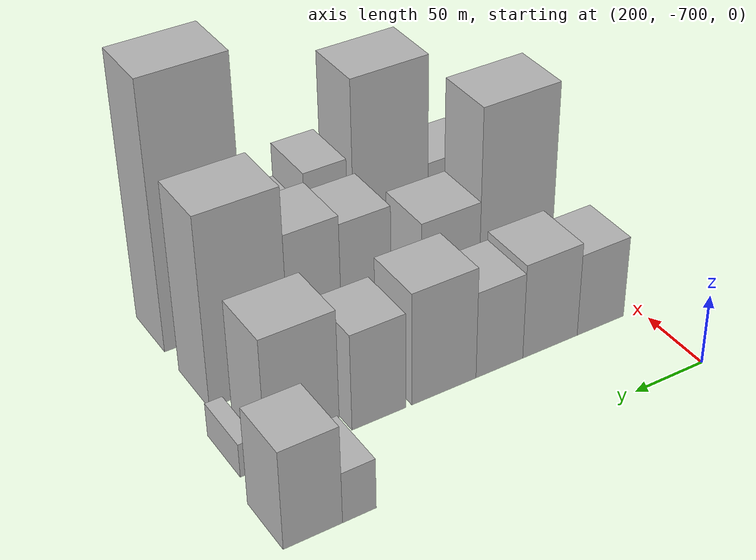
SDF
<sdf version="1.6">
 <world name="default">
  <model name="building_123">
   <static>1</static>
   <pose>220.0000 -462.5780 0 0.000000 0.000000 0.000000</pose>
   <link name="link">
    <pose>0 0 18.00 0 0 0</pose>
    <collision name="collision"><geometry><box><size>40.0000 21.0536 36.0000</size></box></geometry></collision>
    <visual name="visual">
     <cast_shadows>0</cast_shadows>
     <geometry><box><size>40.0000 21.0536 36.0000</size></box></geometry>
     <material>
      <script>
       <uri>model://HANNAS_wall/materials/scripts</uri>
       <uri>model://HANNAS_wall/materials/textures</uri>
       <name>vrc/HANNAS_wall</name>
      </script>
     </material>
    </visual>
   </link>
  </model>
  <model name="building_124">
   <static>1</static>
   <pose>220.0000 -434.0340 0 0.000000 0.000000 0.000000</pose>
   <link name="link">
    <pose>0 0 34.50 0 0 0</pose>
    <collision name="collision"><geometry><box><size>40.0000 36.0343 69.0000</size></box></geometry></collision>
    <visual name="visual">
     <cast_shadows>0</cast_shadows>
     <geometry><box><size>40.0000 36.0343 69.0000</size></box></geometry>
     <material>
      <script>
       <uri>model://HANNAS_wall/materials/scripts</uri>
       <uri>model://HANNAS_wall/materials/textures</uri>
       <name>vrc/HANNAS_wall</name>
      </script>
     </material>
    </visual>
   </link>
  </model>
  <model name="building_173">
   <static>1</static>
   <pose>280.0000 -670.2677 0 0.000000 0.000000 0.000000</pose>
   <link name="link">
    <pose>0 0 30.00 0 0 0</pose>
    <collision name="collision"><geometry><box><size>40.0000 35.5567 60.0000</size></box></geometry></collision>
    <visual name="visual">
     <cast_shadows>0</cast_shadows>
     <geometry><box><size>40.0000 35.5567 60.0000</size></box></geometry>
     <material>
      <script>
       <uri>model://HANNAS_wall/materials/scripts</uri>
       <uri>model://HANNAS_wall/materials/textures</uri>
       <name>vrc/HANNAS_wall</name>
      </script>
     </material>
    </visual>
   </link>
  </model>
  <model name="building_174">
   <static>1</static>
   <pose>280.0000 -632.2430 0 0.000000 0.000000 0.000000</pose>
   <link name="link">
    <pose>0 0 34.50 0 0 0</pose>
    <collision name="collision"><geometry><box><size>40.0000 40.4929 69.0000</size></box></geometry></collision>
    <visual name="visual">
     <cast_shadows>0</cast_shadows>
     <geometry><box><size>40.0000 40.4929 69.0000</size></box></geometry>
     <material>
      <script>
       <uri>model://HANNAS_wall/materials/scripts</uri>
       <uri>model://HANNAS_wall/materials/textures</uri>
       <name>vrc/HANNAS_wall</name>
      </script>
     </material>
    </visual>
   </link>
  </model>
  <model name="building_175">
   <static>1</static>
   <pose>280.0000 -595.1485 0 0.000000 0.000000 0.000000</pose>
   <link name="link">
    <pose>0 0 31.50 0 0 0</pose>
    <collision name="collision"><geometry><box><size>40.0000 33.6961 63.0000</size></box></geometry></collision>
    <visual name="visual">
     <cast_shadows>0</cast_shadows>
     <geometry><box><size>40.0000 33.6961 63.0000</size></box></geometry>
     <material>
      <script>
       <uri>model://HANNAS_wall/materials/scripts</uri>
       <uri>model://HANNAS_wall/materials/textures</uri>
       <name>vrc/HANNAS_wall</name>
      </script>
     </material>
    </visual>
   </link>
  </model>
  <model name="building_176">
   <static>1</static>
   <pose>280.0000 -555.9558 0 0.000000 0.000000 0.000000</pose>
   <link name="link">
    <pose>0 0 40.50 0 0 0</pose>
    <collision name="collision"><geometry><box><size>40.0000 44.6893 81.0000</size></box></geometry></collision>
    <visual name="visual">
     <cast_shadows>0</cast_shadows>
     <geometry><box><size>40.0000 44.6893 81.0000</size></box></geometry>
     <material>
      <script>
       <uri>model://HANNAS_wall/materials/scripts</uri>
       <uri>model://HANNAS_wall/materials/textures</uri>
       <name>vrc/HANNAS_wall</name>
      </script>
     </material>
    </visual>
   </link>
  </model>
  <model name="building_177">
   <static>1</static>
   <pose>280.0000 -511.5141 0 0.000000 0.000000 0.000000</pose>
   <link name="link">
    <pose>0 0 34.50 0 0 0</pose>
    <collision name="collision"><geometry><box><size>40.0000 36.1940 69.0000</size></box></geometry></collision>
    <visual name="visual">
     <cast_shadows>0</cast_shadows>
     <geometry><box><size>40.0000 36.1940 69.0000</size></box></geometry>
     <material>
      <script>
       <uri>model://HANNAS_wall/materials/scripts</uri>
       <uri>model://HANNAS_wall/materials/textures</uri>
       <name>vrc/HANNAS_wall</name>
      </script>
     </material>
    </visual>
   </link>
  </model>
  <model name="building_178">
   <static>1</static>
   <pose>280.0000 -461.8795 0 0.000000 0.000000 0.000000</pose>
   <link name="link">
    <pose>0 0 45.00 0 0 0</pose>
    <collision name="collision"><geometry><box><size>40.0000 47.0751 90.0000</size></box></geometry></collision>
    <visual name="visual">
     <cast_shadows>0</cast_shadows>
     <geometry><box><size>40.0000 47.0751 90.0000</size></box></geometry>
     <material>
      <script>
       <uri>model://HANNAS_wall/materials/scripts</uri>
       <uri>model://HANNAS_wall/materials/textures</uri>
       <name>vrc/HANNAS_wall</name>
      </script>
     </material>
    </visual>
   </link>
  </model>
  <model name="building_179">
   <static>1</static>
   <pose>280.0000 -427.7525 0 0.000000 0.000000 0.000000</pose>
   <link name="link">
    <pose>0 0 12.00 0 0 0</pose>
    <collision name="collision"><geometry><box><size>40.0000 11.1790 24.0000</size></box></geometry></collision>
    <visual name="visual">
     <cast_shadows>0</cast_shadows>
     <geometry><box><size>40.0000 11.1790 24.0000</size></box></geometry>
     <material>
      <script>
       <uri>model://HANNAS_wall/materials/scripts</uri>
       <uri>model://HANNAS_wall/materials/textures</uri>
       <name>vrc/HANNAS_wall</name>
      </script>
     </material>
    </visual>
   </link>
  </model>
  <model name="building_224">
   <static>1</static>
   <pose>340.0000 -648.3101 0 0.000000 0.000000 0.000000</pose>
   <link name="link">
    <pose>0 0 70.50 0 0 0</pose>
    <collision name="collision"><geometry><box><size>40.0000 55.2059 141.0000</size></box></geometry></collision>
    <visual name="visual">
     <cast_shadows>0</cast_shadows>
     <geometry><box><size>40.0000 55.2059 141.0000</size></box></geometry>
     <material>
      <script>
       <uri>model://HANNAS_wall/materials/scripts</uri>
       <uri>model://HANNAS_wall/materials/textures</uri>
       <name>vrc/HANNAS_wall</name>
      </script>
     </material>
    </visual>
   </link>
  </model>
  <model name="building_225">
   <static>1</static>
   <pose>340.0000 -599.5390 0 0.000000 0.000000 0.000000</pose>
   <link name="link">
    <pose>0 0 37.50 0 0 0</pose>
    <collision name="collision"><geometry><box><size>40.0000 42.3363 75.0000</size></box></geometry></collision>
    <visual name="visual">
     <cast_shadows>0</cast_shadows>
     <geometry><box><size>40.0000 42.3363 75.0000</size></box></geometry>
     <material>
      <script>
       <uri>model://HANNAS_wall/materials/scripts</uri>
       <uri>model://HANNAS_wall/materials/textures</uri>
       <name>vrc/HANNAS_wall</name>
      </script>
     </material>
    </visual>
   </link>
  </model>
  <model name="building_226">
   <static>1</static>
   <pose>340.0000 -570.1942 0 0.000000 0.000000 0.000000</pose>
   <link name="link">
    <pose>0 0 10.50 0 0 0</pose>
    <collision name="collision"><geometry><box><size>40.0000 10.3533 21.0000</size></box></geometry></collision>
    <visual name="visual">
     <cast_shadows>0</cast_shadows>
     <geometry><box><size>40.0000 10.3533 21.0000</size></box></geometry>
     <material>
      <script>
       <uri>model://HANNAS_wall/materials/scripts</uri>
       <uri>model://HANNAS_wall/materials/textures</uri>
       <name>vrc/HANNAS_wall</name>
      </script>
     </material>
    </visual>
   </link>
  </model>
  <model name="building_227">
   <static>1</static>
   <pose>340.0000 -539.7524 0 0.000000 0.000000 0.000000</pose>
   <link name="link">
    <pose>0 0 48.00 0 0 0</pose>
    <collision name="collision"><geometry><box><size>40.0000 34.5303 96.0000</size></box></geometry></collision>
    <visual name="visual">
     <cast_shadows>0</cast_shadows>
     <geometry><box><size>40.0000 34.5303 96.0000</size></box></geometry>
     <material>
      <script>
       <uri>model://HANNAS_wall/materials/scripts</uri>
       <uri>model://HANNAS_wall/materials/textures</uri>
       <name>vrc/HANNAS_wall</name>
      </script>
     </material>
    </visual>
   </link>
  </model>
  <model name="building_228">
   <static>1</static>
   <pose>340.0000 -504.5596 0 0.000000 0.000000 0.000000</pose>
   <link name="link">
    <pose>0 0 51.00 0 0 0</pose>
    <collision name="collision"><geometry><box><size>40.0000 35.8553 102.0000</size></box></geometry></collision>
    <visual name="visual">
     <cast_shadows>0</cast_shadows>
     <geometry><box><size>40.0000 35.8553 102.0000</size></box></geometry>
     <material>
      <script>
       <uri>model://HANNAS_wall/materials/scripts</uri>
       <uri>model://HANNAS_wall/materials/textures</uri>
       <name>vrc/HANNAS_wall</name>
      </script>
     </material>
    </visual>
   </link>
  </model>
  <model name="building_229">
   <static>1</static>
   <pose>340.0000 -460.0481 0 0.000000 0.000000 0.000000</pose>
   <link name="link">
    <pose>0 0 67.50 0 0 0</pose>
    <collision name="collision"><geometry><box><size>40.0000 53.1675 135.0000</size></box></geometry></collision>
    <visual name="visual">
     <cast_shadows>0</cast_shadows>
     <geometry><box><size>40.0000 53.1675 135.0000</size></box></geometry>
     <material>
      <script>
       <uri>model://HANNAS_wall/materials/scripts</uri>
       <uri>model://HANNAS_wall/materials/textures</uri>
       <name>vrc/HANNAS_wall</name>
      </script>
     </material>
    </visual>
   </link>
  </model>
  <model name="building_276">
   <static>1</static>
   <pose>400.0000 -640.8296 0 0.000000 0.000000 0.000000</pose>
   <link name="link">
    <pose>0 0 34.50 0 0 0</pose>
    <collision name="collision"><geometry><box><size>40.0000 38.7507 69.0000</size></box></geometry></collision>
    <visual name="visual">
     <cast_shadows>0</cast_shadows>
     <geometry><box><size>40.0000 38.7507 69.0000</size></box></geometry>
     <material>
      <script>
       <uri>model://HANNAS_wall/materials/scripts</uri>
       <uri>model://HANNAS_wall/materials/textures</uri>
       <name>vrc/HANNAS_wall</name>
      </script>
     </material>
    </visual>
   </link>
  </model>
  <model name="building_277">
   <static>1</static>
   <pose>400.0000 -594.0528 0 0.000000 0.000000 0.000000</pose>
   <link name="link">
    <pose>0 0 73.50 0 0 0</pose>
    <collision name="collision"><geometry><box><size>40.0000 54.8028 147.0000</size></box></geometry></collision>
    <visual name="visual">
     <cast_shadows>0</cast_shadows>
     <geometry><box><size>40.0000 54.8028 147.0000</size></box></geometry>
     <material>
      <script>
       <uri>model://HANNAS_wall/materials/scripts</uri>
       <uri>model://HANNAS_wall/materials/textures</uri>
       <name>vrc/HANNAS_wall</name>
      </script>
     </material>
    </visual>
   </link>
  </model>
  <model name="building_278">
   <static>1</static>
   <pose>400.0000 -547.7834 0 0.000000 0.000000 0.000000</pose>
   <link name="link">
    <pose>0 0 46.50 0 0 0</pose>
    <collision name="collision"><geometry><box><size>40.0000 29.7361 93.0000</size></box></geometry></collision>
    <visual name="visual">
     <cast_shadows>0</cast_shadows>
     <geometry><box><size>40.0000 29.7361 93.0000</size></box></geometry>
     <material>
      <script>
       <uri>model://HANNAS_wall/materials/scripts</uri>
       <uri>model://HANNAS_wall/materials/textures</uri>
       <name>vrc/HANNAS_wall</name>
      </script>
     </material>
    </visual>
   </link>
  </model>
  <model name="building_279">
   <static>1</static>
   <pose>400.0000 -514.8514 0 0.000000 0.000000 0.000000</pose>
   <link name="link">
    <pose>0 0 34.50 0 0 0</pose>
    <collision name="collision"><geometry><box><size>40.0000 36.1279 69.0000</size></box></geometry></collision>
    <visual name="visual">
     <cast_shadows>0</cast_shadows>
     <geometry><box><size>40.0000 36.1279 69.0000</size></box></geometry>
     <material>
      <script>
       <uri>model://HANNAS_wall/materials/scripts</uri>
       <uri>model://HANNAS_wall/materials/textures</uri>
       <name>vrc/HANNAS_wall</name>
      </script>
     </material>
    </visual>
   </link>
  </model>
  <model name="building_280">
   <static>1</static>
   <pose>400.0000 -462.2120 0 0.000000 0.000000 0.000000</pose>
   <link name="link">
    <pose>0 0 94.50 0 0 0</pose>
    <collision name="collision"><geometry><box><size>40.0000 57.1510 189.0000</size></box></geometry></collision>
    <visual name="visual">
     <cast_shadows>0</cast_shadows>
     <geometry><box><size>40.0000 57.1510 189.0000</size></box></geometry>
     <material>
      <script>
       <uri>model://HANNAS_wall/materials/scripts</uri>
       <uri>model://HANNAS_wall/materials/textures</uri>
       <name>vrc/HANNAS_wall</name>
      </script>
     </material>
    </visual>
   </link>
  </model>
 </world>
</sdf>
